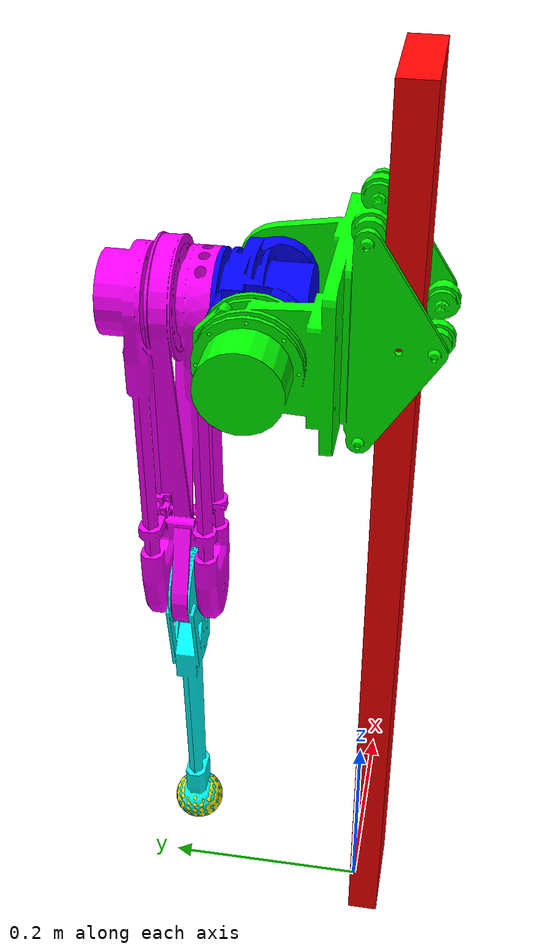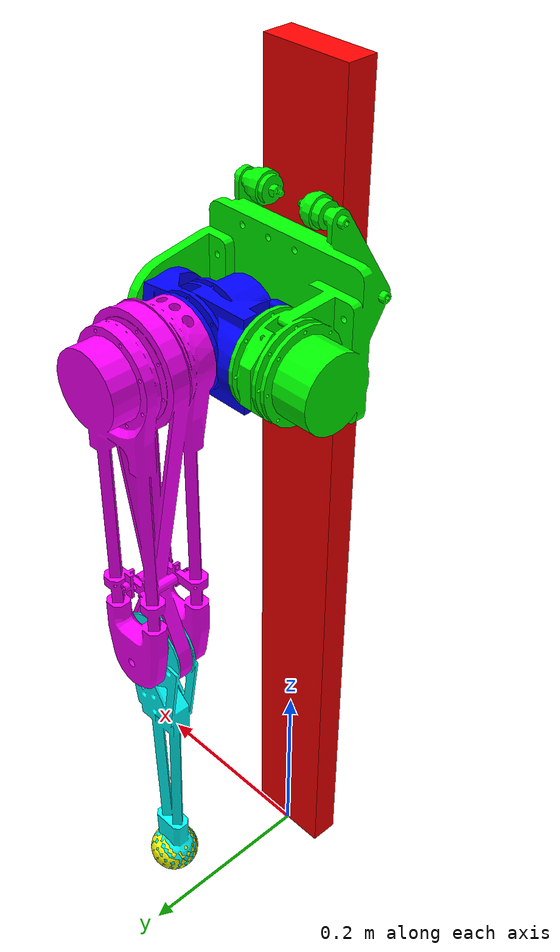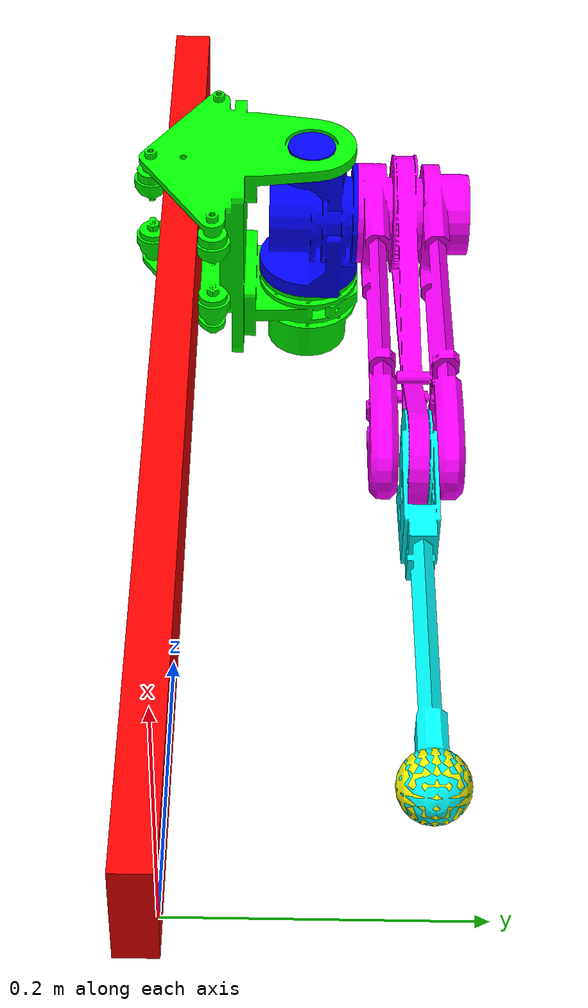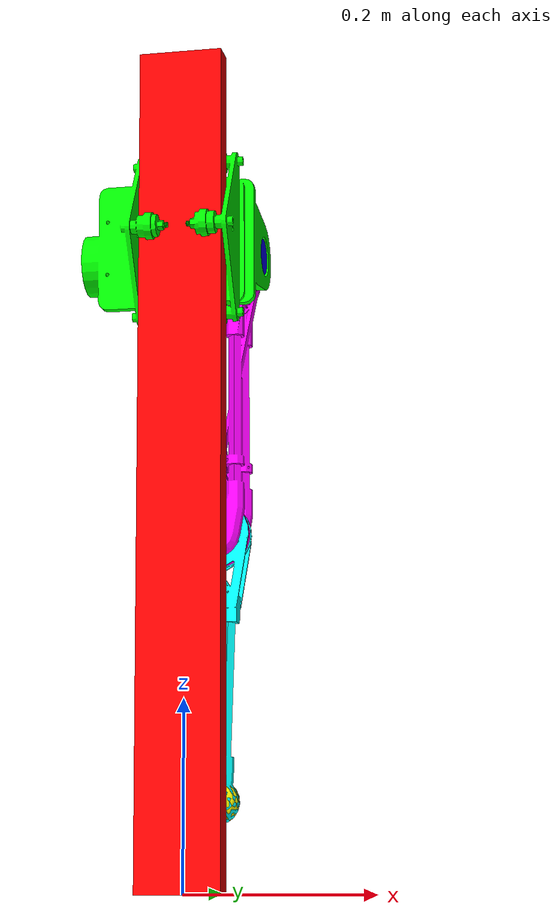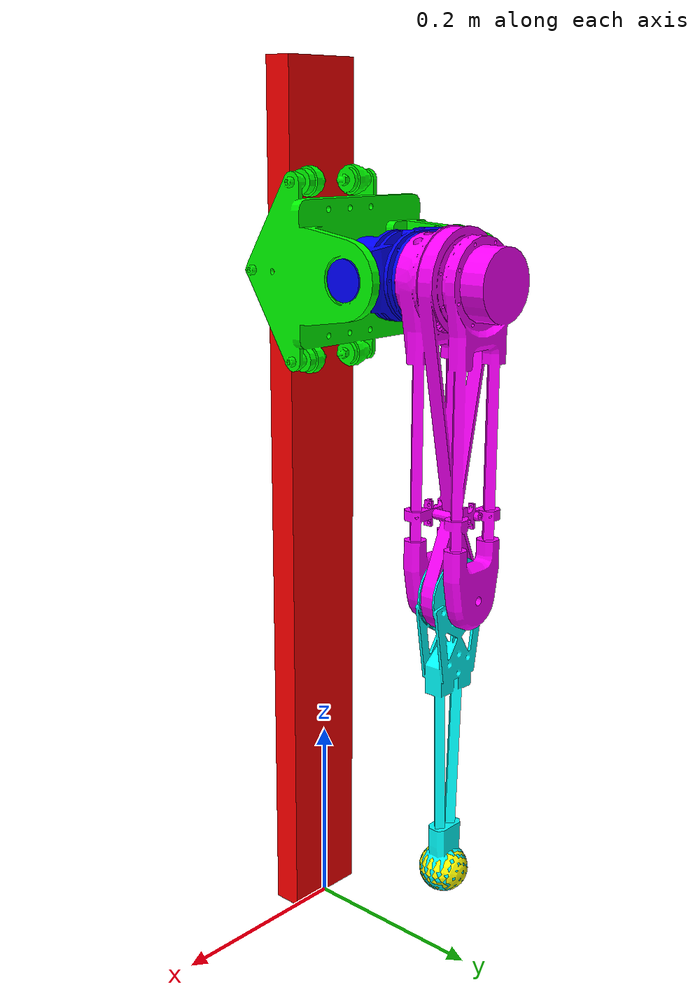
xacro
<?xml version="1.0"?>
<robot xmlns:xacro="http://www.ros.org/wiki/xacro" name="leg_robot">
    <link name="world"/>

    <joint name="base_joint" type="fixed">
        <parent link="world"/>
        <child link="base_link"/>
        <origin xyz="0.0 0.0 0.0" rpy="0.0 0.0 0.0"/>
    </joint>
    <link name="base_link">
        <inertial>
            <origin xyz="0.0 0.0 0.0" rpy="0.0 0.0 0.0"/>
            <mass value="1.0"/>
            <inertia ixx="1.0" ixy="0.0" ixz="0.0" iyy="1.0" iyz="0.0" izz="1.0"/>
        </inertial>
        <visual>
            <origin xyz="0.0 -0.015 0.45" rpy="0.0 0.0 0.0"/>
            <geometry>
                <box size="0.09 0.03 0.9"/>
            </geometry>
            <material name="red">
                <color rgba="1.0 0.0 0.0 2.0"/>
            </material>
        </visual>
        <collision>
            <origin xyz="0.0 -0.015 0.45" rpy="0.0 0.0 0.0"/>
            <geometry>
                <box size="0.09 0.03 0.9"/>
            </geometry>
        </collision>
    </link>
    <gazebo reference="base_link">
        <material>Gazebo/Red</material>
    </gazebo>

    <joint name="body_joint" type="fixed">
        <parent link="base_link"/>
        <child link="body_link"/>
        <origin xyz="0.0 0.0 0.7" rpy="0.0 0.0 0.0"/>
    </joint>
    <link name="body_link">
        <inertial>
            <origin xyz="0.0 0.0 0.0" rpy="0.0 0.0 0.0"/>
            <mass value="1.0"/>
            <inertia ixx="1.0" ixy="0.0" ixz="0.0" iyy="1.0" iyz="0.0" izz="1.0"/>
        </inertial>
        <visual>
            <origin xyz="0.0 0.0 -0.7" rpy="0.0 0.0 ${radians(180)}"/>
            <geometry>
                <mesh filename="package://lily_dog/stl/leg_tester/body_link.stl"/>
            </geometry>
            <material name="green">
                <color rgba="0.0 1.0 0.0 2.0"/>
            </material>
        </visual>
        <collision>
            <origin xyz="-0.0175 0.0185 0.0" rpy="0.0 0.0 0.0"/>
            <geometry>
                <box size="0.175 0.037 0.2"/>
            </geometry>
        </collision>
    </link>
    <gazebo reference="body_link">
        <material>Gazebo/Green</material>
    </gazebo>

    <joint name="shoulder1_joint" type="revolute">
        <parent link="body_link"/>
        <child link="shoulder_link"/>
        <axis xyz="0 0 1"/>
        <limit lower="${radians(-90)}" upper="${radians(90)}" velocity="50.0" effort="1000.0"/>
        <origin xyz="0 0.092 0" rpy="0 ${radians(90)} 0"/>
        <dynamics damping="1.0"/>
    </joint>
    <transmission name="shoulder1_trans" type="SimpleTransmission">
        <type>transmission_interface/SimpleTransmission</type>
        <actuator name="shoulder1_motor">
            <mechanismReduction>1</mechanismReduction>
        </actuator>
        <joint name="shoulder1_joint">
            <hardwareInterface>hardware_interface/PositionJointInterface</hardwareInterface>
        </joint>
    </transmission>
    <link name="shoulder_link">
        <inertial>
            <origin xyz="0.0 0.0 0.0" rpy="0.0 0.0 0.0"/>
            <mass value="0.1"/>
            <inertia ixx="1.0" ixy="0.0" ixz="0.0" iyy="1.0" iyz="0.0" izz="1.0"/>
        </inertial>
        <visual>
            <origin xyz="0.0 0.0 0.0" rpy="0.0 0.0 ${radians(180)}"/>
            <geometry>
                <mesh filename="package://lily_dog/stl/leg_tester/shoulder_link.stl"/>
            </geometry>
            <material name="blue">
                <color rgba="0.0 0.0 1.0 2.0"/>
            </material>
        </visual>
        <collision>
            <origin xyz="0.0 0.0 ${0.07-0.203/2}" rpy="0.0 0.0 0.0"/>
                <geometry>
                    <cylinder radius="0.04" length="0.203"/>
                </geometry>
        </collision>
    </link>
    <gazebo reference="shoulder_link">
        <material>Gazebo/Blue</material>
    </gazebo>

    <joint name="shoulder2_joint" type="continuous">
        <parent link="shoulder_link"/>
        <child link="upper_leg_link"/>
        <axis xyz="0 0 1"/>
        <limit velocity="50.0" effort="1000.0"/>
        <origin xyz="0 0.079 0" rpy="${radians(-90)} 0 0"/>
        <dynamics damping="1.0"/>
    </joint>
    <transmission name="shoulder2_trans" type="SimpleTransmission">
        <type>transmission_interface/SimpleTransmission</type>
        <actuator name="shouder2_motor">
            <mechanismReduction>1</mechanismReduction>
        </actuator>
        <joint name="shoulder2_joint">
            <hardwareInterface>hardware_interface/PositionJointInterface</hardwareInterface>
        </joint>
    </transmission>
    <link name="upper_leg_link">
        <inertial>
            <origin xyz="0.0 0.0 0.0" rpy="0.0 0.0 0.0"/>
            <mass value="0.1"/>
            <inertia ixx="1.0" ixy="0.0" ixz="0.0" iyy="1.0" iyz="0.0" izz="1.0"/>
        </inertial>
        <visual>
            <origin xyz="0.0 0.0 0.0" rpy="0.0 0.0 0.0"/>
            <geometry>
                <mesh filename="package://lily_dog/stl/leg_tester/upper_leg_link.stl"/>
            </geometry>
            <material name="magenta">
                <color rgba="1.0 0.0 1.0 2.0"/>
            </material>
        </visual>
        <collision>
            <origin xyz="${0.388/2-0.05} 0.0 0.0" rpy="0.0 0.0 0.0"/>
                <geometry>
                    <box size="0.388 0.1 0.069"/>
                </geometry>
        </collision>
    </link>
    <gazebo reference="upper_leg_link">
        <material>Gazebo/Purple</material>
    </gazebo>

    <joint name="knee_joint" type="revolute">
        <parent link="upper_leg_link"/>
        <child link="lower_leg_link"/>
        <axis xyz="0 0 1"/>
        <limit lower="${radians(-150)}" upper="${radians(150)}" velocity="50.0" effort="1000.0"/>
        <origin xyz="0.3 0 0" rpy="0 0 0"/>
        <dynamics damping="1.0"/>
    </joint>
    <transmission name="knee_trans" type="SimpleTransmission">
        <type>transmission_interface/SimpleTransmission</type>
        <actuator name="knee_motor">
            <mechanismReduction>${60/44}</mechanismReduction>
        </actuator>
        <joint name="knee_joint">
            <hardwareInterface>hardware_interface/PositionJointInterface</hardwareInterface>
        </joint>
    </transmission>
    <link name="lower_leg_link">
        <inertial>
            <origin xyz="0.0 0.0 0.0" rpy="0.0 0.0 0.0"/>
            <mass value="0.1"/>
            <inertia ixx="1.0" ixy="0.0" ixz="0.0" iyy="1.0" iyz="0.0" izz="1.0"/>
        </inertial>
        <visual>
            <origin xyz="0.0 0.0 0.0" rpy="${radians(180)} 0.0 0.0"/>
            <geometry>
                <mesh filename="package://lily_dog/stl/leg_tester/lower_leg_link.stl"/>
            </geometry>
            <material name="cyan">
                <color rgba="0.0 1.0 1.0 2.0"/>
            </material>
        </visual>
        <collision>
            <origin xyz="${0.34/2-0.0375} 0.0 0.0" rpy="0.0 0.0 0.0"/>
                <geometry>
                    <box size="0.34 0.06 0.026"/>
                </geometry>
        </collision>
    </link>
    <gazebo reference="lower_leg_link">
        <material>Gazebo/SkyBlue</material>
    </gazebo>

    <joint name="toe_joint" type="fixed">
        <parent link="lower_leg_link"/>
        <child link="toe_link"/>
        <origin xyz="0.3 0.0 0.0" rpy="0.0 0.0 0.0"/>
    </joint>
    <link name="toe_link">
        <inertial>
            <origin xyz="0.0 0.0 0.0" rpy="0.0 0.0 0.0"/>
            <mass value="0.01"/>
            <inertia ixx="0.1" ixy="0.0" ixz="0.0" iyy="0.1" iyz="0.0" izz="0.1"/>
        </inertial>
        <visual>
            <origin xyz="0.0 0.0 0.0" rpy="0.0 0.0 0.0"/>
            <geometry>
                <sphere radius="0.025"/>
            </geometry>
            <material name="yellow">
                <color rgba="1.0 1.0 0.0 2.0"/>
            </material>
        </visual>
        <collision>
            <origin xyz="0.0 0.0 0.0" rpy="0.0 0.0 0.0"/>
                <geometry>
                    <sphere radius="0.025"/>
                </geometry>
        </collision>
    </link>
    <gazebo reference="toe_link">
        <material>Gazebo/Yellow</material>
    </gazebo>

    <gazebo>
        <plugin name="gazebo_ros_control" filename="libgazebo_ros_control.so">
            <robotNamespace>/</robotNamespace>
            <robotSimType>gazebo_ros_control/DefaultRobotHWSim</robotSimType>
            <legacyModeNS>true</legacyModeNS>
        </plugin>
    </gazebo>

</robot>
